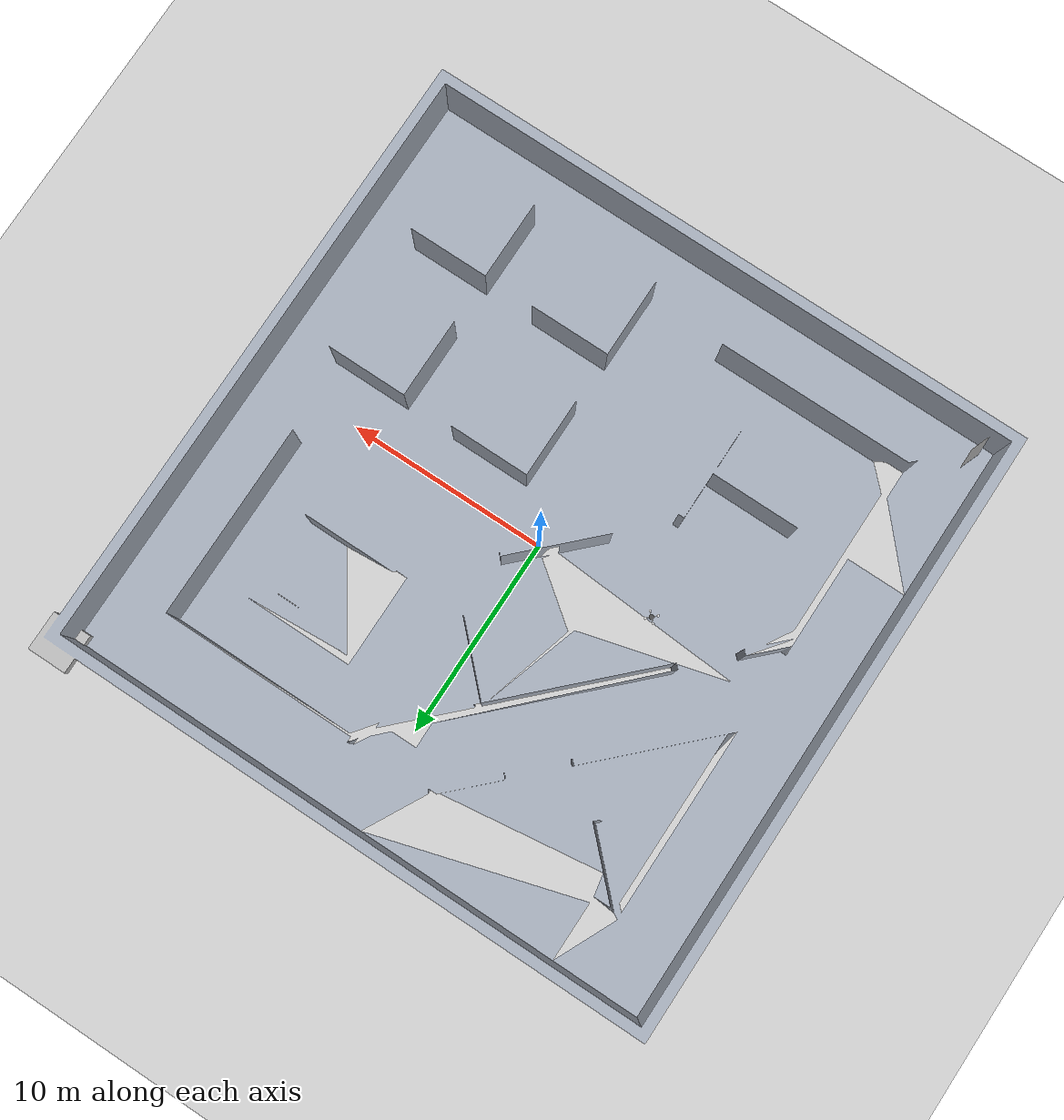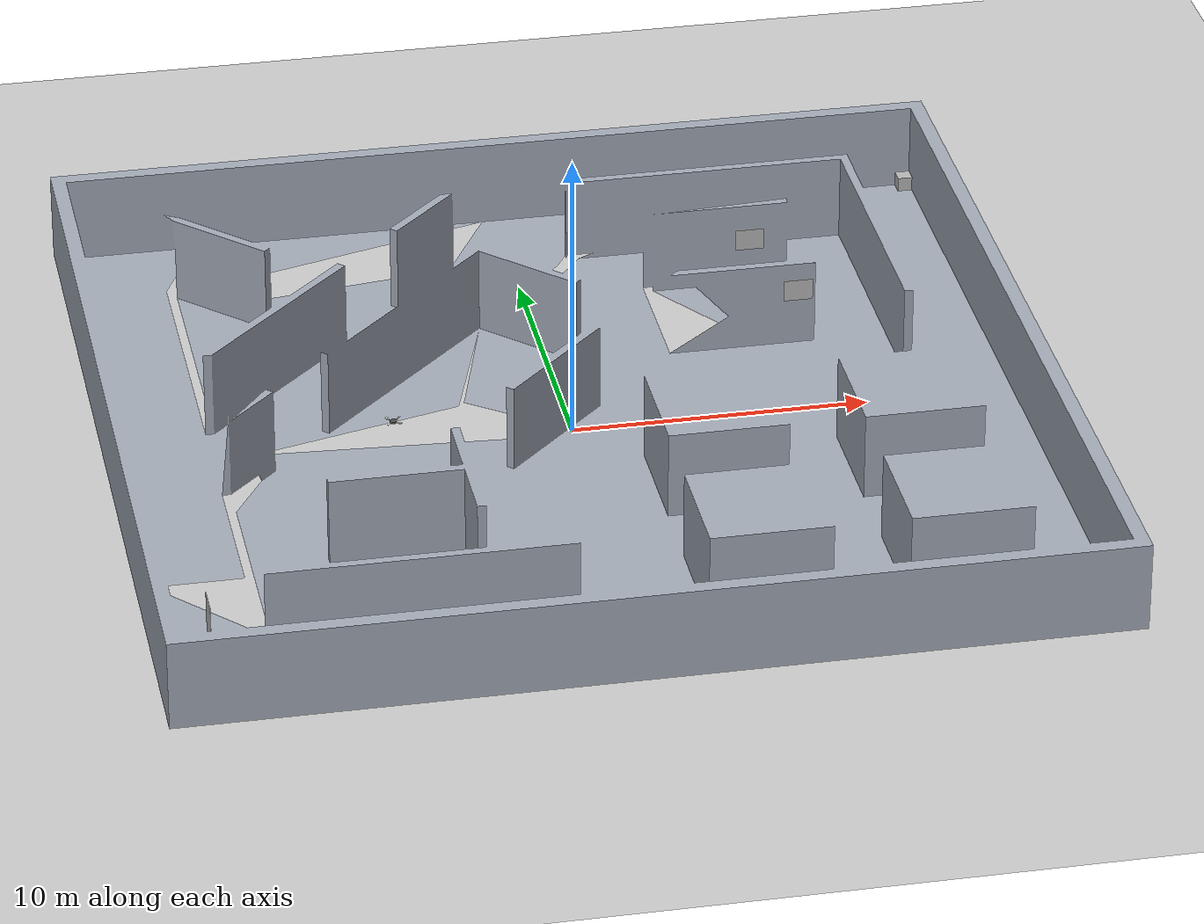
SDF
<?xml version="1.0" ?>
<sdf version="1.6">
  <world name="default">

    <!-- 光照 -->
    <scene>
          <ambient>0.5 0.5 0.5 1.0</ambient>
          <background>0.7 0.7 0.7 1.0</background>
          <shadows>true</shadows>
          <grid>true</grid>
        </scene>

        <light name='main_sun' type='directional'>
          <cast_shadows>1</cast_shadows>
          <pose>0 0 15 0.6 0.2 0</pose>
          <diffuse>0.7 0.7 0.7 1</diffuse>
          <specular>0.2 0.2 0.2 1</specular>
          <attenuation>
            <range>1000</range>
            <constant>0.9</constant>
            <linear>0.01</linear>
            <quadratic>0.001</quadratic>
          </attenuation>
          <direction>-0.5 0.2 -0.9</direction>
        </light>

    <!-- 地面（可选，但建议有，方便定位） -->
    <include>
      <uri>model://ground_plane</uri>
    </include>

    <!-- 你的迷宫墙体 mesh 地图 -->
    <model name="complex_office_map">
      <static>true</static>
      <pose>15.5 15.5 -0.5  0 0 -1.5708</pose>
      <link name="map_link">
        <visual name="map_visual">
          <geometry>
            <mesh>
              <uri>file:///root/catkin_ws/src/FALCON/uav_simulator/map_render/resource/untitled_v1.dae</uri>
            <scale>1 1 1</scale>
            </mesh>
          </geometry>
        </visual>
      </link>
    </model>

    <include>
    <uri>model:///root/catkin_ws/src/gazebo</uri>
    <name>gz_uav</name>
    <pose>-6 0 1 0 0 0</pose>
    </include>

    <include>
    <uri>model:///root/catkin_ws/src/gazebo/poster_plane 1</uri>
    <name>poster2</name>
    <pose>8.61662 4.49831 2 0 -0 1.57</pose>
    </include>

    <include>
    <uri>model:///root/catkin_ws/src/gazebo/poster_plane 2</uri>
    <name>poster3</name>
    <pose>7.76 8.33 2 0 0 1.57</pose>
    </include>

    <include>
    <uri>model:///root/catkin_ws/src/gazebo/poster_plane 3</uri>
    <name>poster4</name>
    <pose>-14 -14 2 0 0 0</pose>
    </include>

  </world>
</sdf>

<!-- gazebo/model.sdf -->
<sdf version="1.6">
  <model name="falcon_cam_uav">
    <static>false</static>

    <link name="base_link">
      <pose>0 0 0 0 0 0</pose>

      <visual name="base_vis">
              <geometry><cylinder><radius>0.12</radius><length>0.06</length></cylinder></geometry>
              <material><script><name>Gazebo/DarkGrey</name></script></material>
            </visual>

            <visual name="arms_vis">
              <geometry><box><size>0.6 0.03 0.015</size></box></geometry>
              <pose>0 0 0 0 0 0.785</pose>
            </visual>
            <visual name="arms_vis_2">
              <geometry><box><size>0.6 0.03 0.015</size></box></geometry>
              <pose>0 0 0 0 0 -0.785</pose>
            </visual>

            <visual name="motor_1"><pose>0.21 0.21 0.02 0 0 0</pose>
              <geometry><cylinder><radius>0.03</radius><length>0.02</length></cylinder></geometry>
              <material><script><name>Gazebo/Black</name></script></material>
            </visual>
            <visual name="motor_2"><pose>-0.21 0.21 0.02 0 0 0</pose>
              <geometry><cylinder><radius>0.03</radius><length>0.02</length></cylinder></geometry>
              <material><script><name>Gazebo/Black</name></script></material>
            </visual>
            <visual name="motor_3"><pose>0.21 -0.21 0.02 0 0 0</pose>
              <geometry><cylinder><radius>0.03</radius><length>0.02</length></cylinder></geometry>
              <material><script><name>Gazebo/Black</name></script></material>
            </visual>
            <visual name="motor_4"><pose>-0.21 -0.21 0.02 0 0 0</pose>
              <geometry><cylinder><radius>0.03</radius><length>0.02</length></cylinder></geometry>
              <material><script><name>Gazebo/Black</name></script></material>
            </visual>

            <visual name="prop_1"><pose>0.21 0.21 0.04 0 0 0</pose>
              <geometry><cylinder><radius>0.05</radius><length>0.005</length></cylinder></geometry>
              <material><script><name>Gazebo/White</name></script></material> </visual>
            <visual name="prop_2"><pose>-0.21 0.21 0.04 0 0 0</pose>
              <geometry><cylinder><radius>0.05</radius><length>0.005</length></cylinder></geometry>
              <material><script><name>Gazebo/White</name></script></material>
            </visual>
            <visual name="prop_3"><pose>0.21 -0.21 0.04 0 0 0</pose>
              <geometry><cylinder><radius>0.05</radius><length>0.005</length></cylinder></geometry>
              <material><script><name>Gazebo/White</name></script></material>
            </visual>
            <visual name="prop_4"><pose>-0.21 -0.21 0.04 0 0 0</pose>
              <geometry><cylinder><radius>0.05</radius><length>0.005</length></cylinder></geometry>
              <material><script><name>Gazebo/White</name></script></material>
            </visual>

      <!-- Camera sensor -->
      <sensor name="rgb_camera" type="camera">
        <always_on>true</always_on>
        <update_rate>15</update_rate>
        <camera>
          <horizontal_fov>1.047</horizontal_fov>
          <image>
            <width>640</width>
            <height>480</height>
            <format>R8G8B8</format>
          </image>
          <clip>
            <near>0.05</near>
            <far>50</far>
          </clip>
        </camera>

        <!-- ROS bridge plugin -->
        <plugin name="gazebo_ros_camera" filename="libgazebo_ros_camera.so">
          <cameraName>camera</cameraName>
          <frameName>camera_link</frameName>
          <imageTopicName>image_raw</imageTopicName>
          <cameraInfoTopicName>camera_info</cameraInfoTopicName>
        </plugin>
      </sensor>

    </link>
  </model>
</sdf>

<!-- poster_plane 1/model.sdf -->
<sdf version="1.6">
  <model name="poster_plane 1">
    <static>true</static>

    <link name="poster_link">
      <!-- 视觉：一个很薄的盒子，避免与墙面z-fighting -->
      <visual name="poster_visual">
        <pose>0 0 0 0 0 0</pose>
        <geometry>
          <!-- 海报尺寸：先设 1.0m x 0.7m（你可后面改） -->
          <box><size>0.01 1.0 0.75</size></box>
        </geometry>

        <material>
          <script>
            <uri>file:///root/catkin_ws/src/gazebo/poster_plane 1/materials/scripts</uri>
            <uri>file:///root/catkin_ws/src/gazebo/poster_plane 1/materials/textures</uri>
            <name>Poster/Poster1</name>
          </script>
        </material>
      </visual>
    </link>
  </model>
</sdf>

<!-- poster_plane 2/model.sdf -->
<sdf version="1.6">
  <model name="poster_plane 2">
    <static>true</static>

    <link name="poster_link">
      <!-- 视觉：一个很薄的盒子，避免与墙面z-fighting -->
      <visual name="poster_visual">
        <pose>0 0 0 0 0 0</pose>
        <geometry>
          <!-- 海报尺寸：先设 1.0m x 0.7m（你可后面改） -->
          <box><size>0.01 1.0 0.75</size></box>
        </geometry>

        <material>
          <script>
            <uri>file:///root/catkin_ws/src/gazebo/poster_plane 2/materials/scripts</uri>
            <uri>file:///root/catkin_ws/src/gazebo/poster_plane 2/materials/textures</uri>
            <name>Poster/Poster2</name>
          </script>
        </material>
      </visual>
    </link>
  </model>
</sdf>

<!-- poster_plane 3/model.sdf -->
<sdf version="1.6">
  <model name="poster_plane 3">
    <static>true</static>

    <link name="poster_link">
      <!-- 视觉：一个很薄的盒子，避免与墙面z-fighting -->
      <visual name="poster_visual">
        <pose>0 0 0 0 0 0</pose>
        <geometry>
          <!-- 海报尺寸：先设 1.0m x 0.7m（你可后面改） -->
          <box><size>0.01 1.0 3</size></box>
        </geometry>

        <material>
          <script>
            <uri>file:///root/catkin_ws/src/gazebo/poster_plane 3/materials/scripts</uri>
            <uri>file:///root/catkin_ws/src/gazebo/poster_plane 3/materials/textures</uri>
            <name>Poster/Poster4</name>
          </script>
        </material>
      </visual>
    </link>
  </model>
</sdf>
